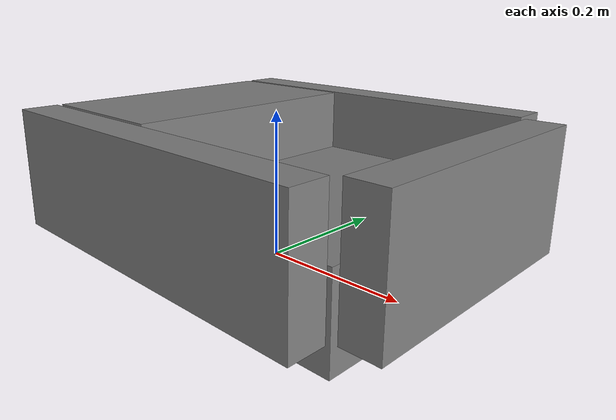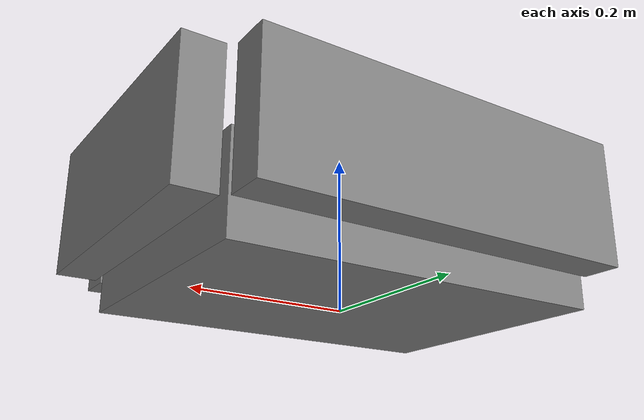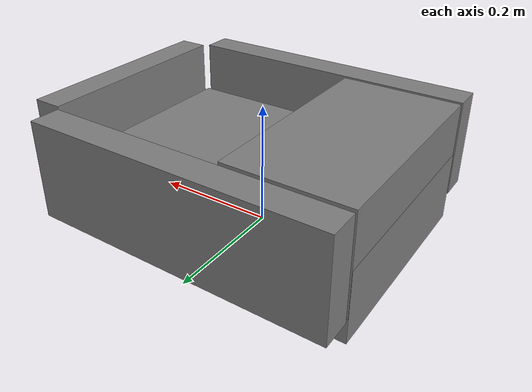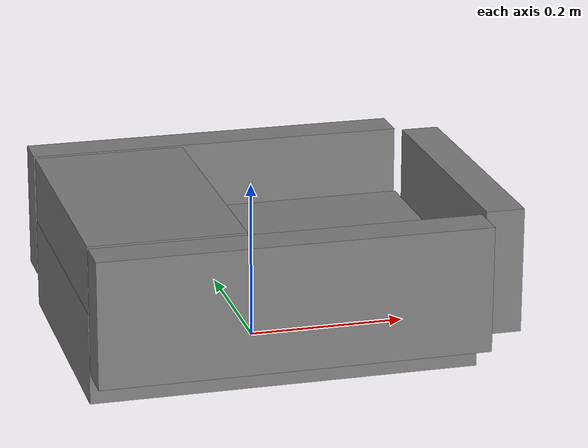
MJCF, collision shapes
<?xml version="1.0" ?>
<!-- @bbox dx=0.486 dy=0.346 dz=0.200 -->
<mujoco model="water_bath">
  <asset>
    <texture type="2d" name="material_0" file="material_0.png"/>
    <material name="material_0" texture="material_0" specular="0.4000000000000001" shininess="0.001"/>
    <mesh file="water_bath.obj" scale="4.87 4.87 4.87"/>
  </asset>
  <worldbody>
    <body name="water_bath">
      <inertial pos="0 0 0.100" mass="0.02" diaginertia="0.0008 0.0008 0.0005"/>
      <!-- Visual mesh (no collision) -->
      <geom material="material_0" mesh="water_bath" class="visual"/>

      <!-- Collision: 基于mesh分析，水浴槽有三个水平面 -->
      <!-- 顶面 Z=0.20, 水槽底面 Z=0.04, 模型底面 Z=0 -->
      <!-- 内壁位于X=-0.239处，凹陷区在X>-0.239区域 -->

      <!-- 1. 底面 box: 完整矩形底面 Z=0 到 Z=0.115 (高度0.115m) -->
      <geom type="box" size="0.243 0.173 0.0575" pos="0 0 0.0575" class="collision"/>

      <!-- 2. X负侧壁: 包含内外壁，厚度占X全长40% = 0.1944m -->
      <geom type="box" size="0.0972 0.173 0.080" pos="-0.14528 0 0.120" class="collision"/>

      <!-- 3. X正侧壁: 只有外壁，厚度占X全长10% = 0.0486m -->
      <geom type="box" size="0.0243 0.173 0.080" pos="0.2757 0 0.120" class="collision"/>

      <!-- 4. Y负侧壁: 完整侧壁，厚度占X全长10% = 0.0486m -->
      <geom type="box" size="0.243 0.0243 0.080" pos="0 -0.2043 0.120" class="collision"/>

      <!-- 5. Y正侧壁: 完整侧壁，厚度占X全长10% = 0.0486m -->
      <geom type="box" size="0.243 0.0243 0.080" pos="0 0.2043 0.120" class="collision"/>

      <geom name="solution" type="box"
            size="0.220 0.150 0.12" pos="0.0150 0.000 0.043"
            rgba="0 1 0 0" class="visual"/>

      <!-- Sites -->
      <site class="grasppoint" group="4" pos="0.0500 0.0000 0.120"/>
      <site class="grasppoint" group="4" pos="0.0500 0.0000 0.160"/>
      <site class="grasppoint" group="4" pos="0.0500 0.0000 0.190"/>
      <site class="boundpoint" group="3" name="bnd_p0"   pos="-0.243 -0.173 0.000"/>
      <site class="boundpoint" group="3" name="bnd_px"   pos=" 0.243 -0.173 0.000"/>
      <site class="boundpoint" group="3" name="bnd_py"   pos="-0.243  0.173 0.000"/>
      <site class="boundpoint" group="3" name="bnd_pxy"  pos=" 0.243  0.173 0.000"/>
      <site class="boundpoint" group="3" name="bnd_pz"   pos="-0.243 -0.173 0.200"/>
      <site class="boundpoint" group="3" name="bnd_pxz"  pos=" 0.243 -0.173 0.200"/>
      <site class="boundpoint" group="3" name="bnd_pyz"  pos="-0.243  0.173 0.200"/>
      <site class="boundpoint" group="3" name="bnd_pxyz" pos=" 0.243  0.173 0.200"/>
      <!-- placepoint 在凹陷区域中央，Z=0.1375让烧杯坐在cavity底部 (Z=0.115) -->
      <site class="placepoint" group="2" pos="0.05 0.00 0.1375"/>
      <site name="top_site" pos="0 0 0.20" size="0.01" rgba="1 0 0 0"/>
      <site name="bottom_site" pos="0 0 0.04" size="0.01" rgba="0 1 0 0"/>
</body>
  </worldbody>
  <compiler boundmass="0.015" boundinertia="1e-05" angle="radian"/>
  <default>
    <default class="visual">
      <geom group="2" type="mesh" contype="0" conaffinity="0" density="50"/>
    </default>
    <default class="collision">
      <geom group="3" density="50" friction="1.5 0.1 0.1" solimp="0.9 0.95 0.001" solref="0.02 1"/>
    </default>
    <default class="boundpoint">
      <site type="sphere" size="0.01" group="3" rgba="1 0 0 1"/>
    </default>
    <default class="placepoint">
      <site type="sphere" size="0.01" group="2" rgba="0 0 1 0"/>
    </default>
    <default class="grasppoint">
      <site type="sphere" size="0.005" group="4" rgba="0 0 1 1"/>
    </default>
  </default>
</mujoco>
